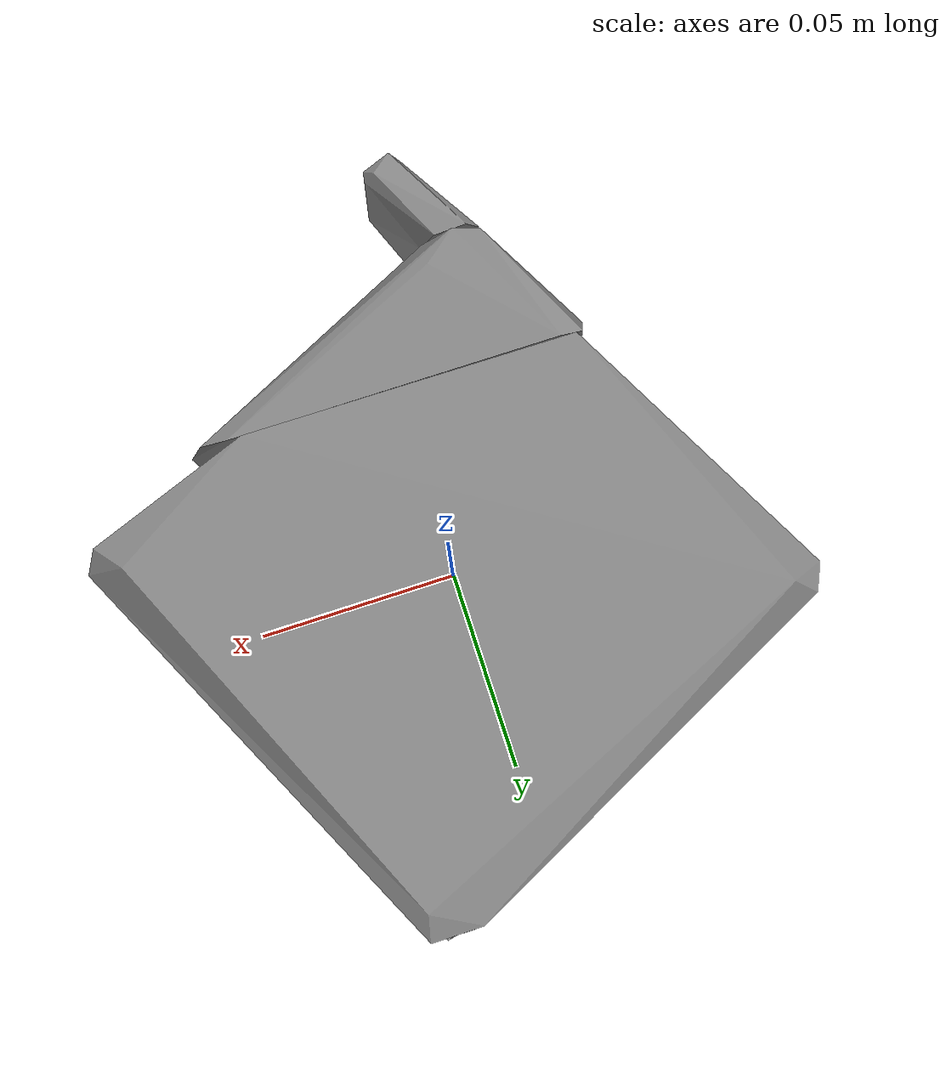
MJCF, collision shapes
<mujoco model="nine_hole_peg_test">
  <compiler angle="radian" />

  <asset>
    <mesh name="nine_hole_peg_test_visual_mesh" file="nine_hole_peg_test/textured.obj" />
    <mesh name="nine_hole_peg_test_collision_mesh_0" file="nine_hole_peg_test/textured_coacd_0.stl" />
    <mesh name="nine_hole_peg_test_collision_mesh_1" file="nine_hole_peg_test/textured_coacd_1.stl" />
    <mesh name="nine_hole_peg_test_collision_mesh_2" file="nine_hole_peg_test/textured_coacd_2.stl" />
    <mesh name="nine_hole_peg_test_collision_mesh_3" file="nine_hole_peg_test/textured_coacd_3.stl" />
    <texture name="nine_hole_peg_test_texture" type="2d" file="nine_hole_peg_test/texture_map.png" />
    <material name="nine_hole_peg_test_material" texture="nine_hole_peg_test_texture" />
  </asset>

  <worldbody>
    <body name="nine_hole_peg_test" pos="0 0 0" euler="0 0 0">
      <freejoint name="nine_hole_peg_test_joint" />
      <geom name="nine_hole_peg_test_visual_geom" type="mesh" mesh="nine_hole_peg_test_visual_mesh" material="nine_hole_peg_test_material" pos="0.000188539225942058 -0.024373721273276618 -0.019952866039031774" euler="0 0 0" contype="0" conaffinity="0" group="0" />
      <geom name="nine_hole_peg_test_collision_geom_0" type="mesh" mesh="nine_hole_peg_test_collision_mesh_0" pos="0.000188539225942058 -0.024373721273276618 -0.019952866039031774" euler="0 0 0" contype="1" conaffinity="1" group="3" />
      <geom name="nine_hole_peg_test_collision_geom_1" type="mesh" mesh="nine_hole_peg_test_collision_mesh_1" pos="0.000188539225942058 -0.024373721273276618 -0.019952866039031774" euler="0 0 0" contype="1" conaffinity="1" group="3" />
      <geom name="nine_hole_peg_test_collision_geom_2" type="mesh" mesh="nine_hole_peg_test_collision_mesh_2" pos="0.000188539225942058 -0.024373721273276618 -0.019952866039031774" euler="0 0 0" contype="1" conaffinity="1" group="3" />
      <geom name="nine_hole_peg_test_collision_geom_3" type="mesh" mesh="nine_hole_peg_test_collision_mesh_3" pos="0.000188539225942058 -0.024373721273276618 -0.019952866039031774" euler="0 0 0" contype="1" conaffinity="1" group="3" />
      <inertial pos="0 0 0" euler="0 0 0" mass="1.435" diaginertia="0.001 0.001 0.001" />
    </body>
  </worldbody>
</mujoco>
